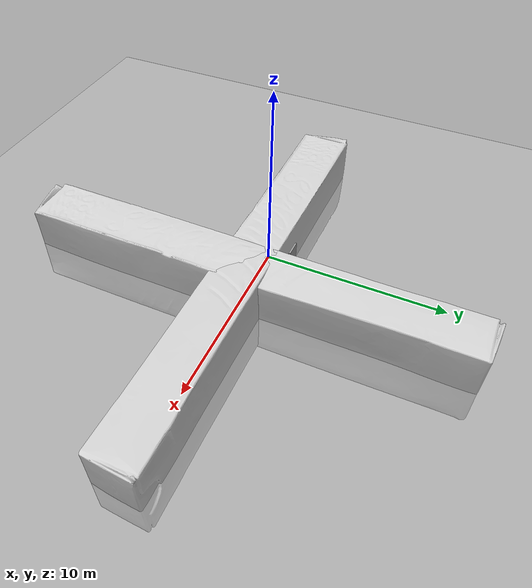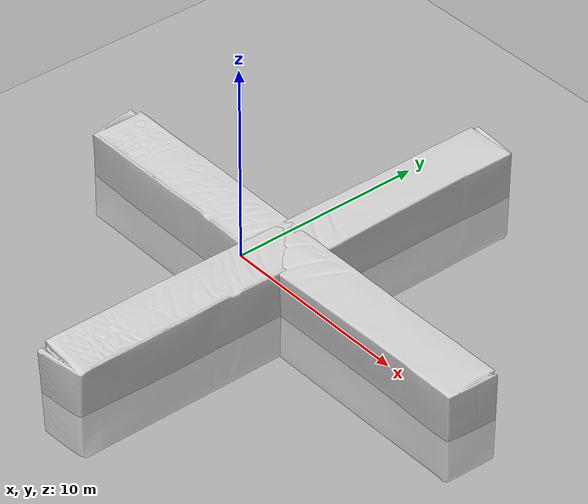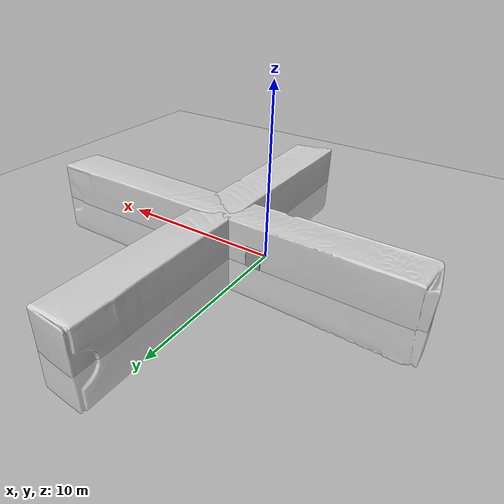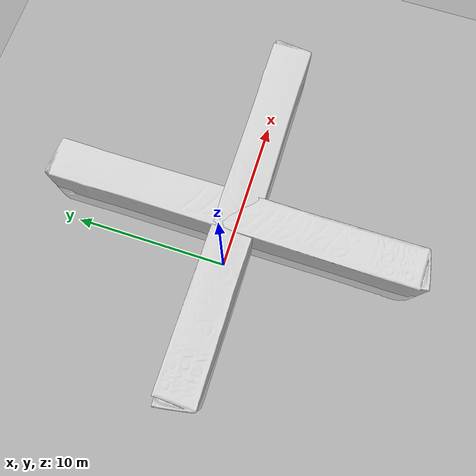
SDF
<sdf version="1.4">
 <world name="default">
  <include><uri>model://ground_plane</uri></include>
  <include><uri>model://sun</uri></include>
  <include><uri>model://shelf</uri><pose>0 1.45
       0 0 0 0</pose><static>true</static></include>
  <include><uri>model://coke_can</uri><pose>3 0 0 0 0 0</pose><static>false</static></include>
  <include><uri>model://pringles_red</uri><pose>3 0 0 0 0 0</pose><static>false</static></include>
  <include><uri>model://tomato_sauce</uri><pose>3 0 0 0 0 0</pose><static>false</static></include>
  <include><uri>model://milk</uri><pose>3 0 0 0 0 0</pose><static>false</static></include>
  <light type="directional" name="my_light"><origin pose="0 2 3 0 0.7 0"/></light>
  <physics type="ode">
   <max_step_size>0.001</max_step_size>
   <real_time_factor>1</real_time_factor>
   <real_time_update_rate>0</real_time_update_rate>
  </physics>
 </world>
</sdf>

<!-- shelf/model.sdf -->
<sdf version="1.5">
  <model name="bookshelf">
    <static>true</static>
    <link name="link">
      <inertial>
        <mass>1.0</mass>
      </inertial>
      <collision name="back">
        <pose>0 0.005 0.6 0 0 0</pose>
        <geometry>
          <box>
            <size>0.9 0.01 1.2</size>
          </box>
        </geometry>
      </collision>
      <visual name="visual1">
        <pose>0 0.005 0.6 0 0 0</pose>
        <geometry>
          <box>
            <size>0.9 0.01 1.2</size>
          </box>
        </geometry>
        <material>
          <script>
            <uri>file://media/materials/scripts/gazebo.material</uri>
            <name>Gazebo/Grey</name>
          </script>
        </material>
      </visual>
      <collision name="left_side">
        <pose>0.45 -0.195 0.6 0 0 0</pose>
        <geometry>
          <box>
            <size>0.02 0.4 1.2</size>
          </box>
        </geometry>
      </collision>
      <visual name="visual2">
        <pose>0.45 -0.195 0.6 0 0 0</pose>
        <geometry>
          <box>
            <size>0.02 0.4 1.2</size>
          </box>
        </geometry>
        <material>
          <script>
            <uri>file://media/materials/scripts/gazebo.material</uri>
            <name>Gazebo/Grey</name>
          </script>
        </material>
      </visual>
      <collision name="right_side">
        <pose>-0.45 -0.195 0.6 0 0 0</pose>
        <geometry>
          <box>
            <size>0.02 0.4 1.2</size>
          </box>
        </geometry>
      </collision>
      <visual name="visual3">
        <pose>-0.45 -0.195 0.6 0 0 0</pose>
        <geometry>
          <box>
            <size>0.02 0.4 1.2</size>
          </box>
        </geometry>
        <material>
          <script>
            <uri>file://media/materials/scripts/gazebo.material</uri>
            <name>Gazebo/Grey</name>
          </script>
        </material>
      </visual>
      <collision name="bottom">
        <pose>0 -0.195 0.03 0 0 0</pose>
        <geometry>
          <box>
            <size>0.88 0.4 0.06</size>
          </box>
        </geometry>
      </collision>
      <visual name="visual4">
        <pose>0 -0.195 0.03 0 0 0</pose>
        <geometry>
          <box>
            <size>0.88 0.4 0.06</size>
          </box>
        </geometry>
        <material>
          <script>
            <uri>file://media/materials/scripts/gazebo.material</uri>
            <name>Gazebo/Grey</name>
          </script>
        </material>
      </visual>
      <collision name="top">
        <pose>0 -0.195 1.19 0 0 0</pose>
        <geometry>
          <box>
            <size>0.88 0.4 0.02</size>
          </box>
        </geometry>
      </collision>
      <visual name="visual5">
        <pose>0 -0.195 1.19 0 0 0</pose>
        <geometry>
          <box>
            <size>0.88 0.4 0.02</size>
          </box>
        </geometry>
        <material>
          <script>
            <uri>file://media/materials/scripts/gazebo.material</uri>
            <name>Gazebo/Grey</name>
          </script>
        </material>
      </visual>
      <collision name="low_shelf">
        <pose>0 -0.195 0.43 0 0 0</pose>
        <geometry>
          <box>
            <size>0.88 0.4 0.02</size>
          </box>
        </geometry>
      </collision>
      <visual name="visual6">
        <pose>0 -0.195 0.43 0 0 0</pose>
        <geometry>
          <box>
            <size>0.88 0.4 0.02</size>
          </box>
        </geometry>
        <material>
          <script>
            <uri>file://media/materials/scripts/gazebo.material</uri>
            <name>Gazebo/Grey</name>
          </script>
        </material>
      </visual>
      <collision name="high_shelf">
        <pose>0 -0.195 0.8 0 0 0</pose>
        <geometry>
          <box>
            <size>0.88 0.4 0.02</size>
          </box>
        </geometry>
      </collision>
      <visual name="visual7">
        <pose>0 -0.195 0.8 0 0 0</pose>
        <geometry>
          <box>
            <size>0.88 0.4 0.02</size>
          </box>
        </geometry>
        <material>
          <script>
            <uri>file://media/materials/scripts/gazebo.material</uri>
            <name>Gazebo/Grey</name>
          </script>
        </material>
      </visual>
    </link>
  </model>
</sdf>

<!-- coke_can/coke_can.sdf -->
<sdf version="1.5">
  <model name="coke_can">
    <link name="coke_can_link">
      <inertial>
        <pose>0 0 0.06 0 0 0</pose>
        <mass>0.390</mass>
        <inertia>
          <ixx>0.00055575</ixx>
          <ixy>0</ixy>
          <ixz>0</ixz>
          <iyy>0.00055575</iyy>
          <iyz>0</iyz>
          <izz>0.0001755</izz>
        </inertia>
      </inertial>
      <collision name="collision">
        <pose>0.003937 0.0047244 -0.18 0 0 0</pose>
        <geometry>
          <mesh>
            <uri>model://coke_can/meshes/coke_can.dae</uri>
          </mesh>
        </geometry>
        <surface>
          <friction>
            <ode>
              <mu>1.0</mu>
              <mu2>1.0</mu2>
            </ode>
          </friction>
          <contact>
            <ode>
              <kp>10000000.0</kp>
              <kd>1.0</kd>
              <min_depth>0.001</min_depth>
              <max_vel>0.1</max_vel>
            </ode>
          </contact>
        </surface>
      </collision>
      <visual name="visual">
        <pose>0.003937 0.0047244 -0.18 0 0 0</pose>
        <geometry>
          <mesh>
            <uri>model://coke_can/meshes/coke_can.dae</uri>
          </mesh>
        </geometry>
      </visual>
    </link>
  </model>
</sdf>

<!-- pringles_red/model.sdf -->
<sdf version='1.6'>
  <model name='pringles_red'>
    <link name='link'>
      <inertial>
        <mass>0.25</mass>
        <inertia>
          <ixx>0</ixx>
          <ixy>0</ixy>
          <ixz>0</ixz>
          <iyy>0</iyy>
          <iyz>0</iyz>
          <izz>0</izz>
        </inertia>
      </inertial>
      <velocity_decay>
        <linear>0</linear>
        <angular>0</angular>
      </velocity_decay>
      <self_collide>0</self_collide>
      <kinematic>0</kinematic>
      <gravity>1</gravity>
      <enable_wind>0</enable_wind>
      <pose frame=''>0 0 0 -0 -0 -0</pose>
      <visual name='visual'>
        <geometry>
          <cylinder>
            <radius>0.04</radius>
            <length>0.235</length>
          </cylinder>
        </geometry>
        <material>
          <script>
            <uri>model://pringles/material/scripts</uri>
            <uri>model://pringles/material/textures</uri>
            <name>Custom/pringles</name>
          </script>
        </material>
        <pose frame=''>0 0 0 0 -0 0</pose>
        <transparency>0</transparency>
        <cast_shadows>1</cast_shadows>
      </visual>
      <collision name='collision'>
        <laser_retro>0</laser_retro>
        <max_contacts>10</max_contacts>
        <pose frame=''>0 0 0 0 -0 0</pose>
        <geometry>
          <cylinder>
            <radius>0.04</radius>
            <length>0.235</length>
          </cylinder>
        </geometry>
        <surface>
          <friction>
            <ode>
              <mu>1</mu>
              <mu2>1</mu2>
              <fdir1>0 0 0</fdir1>
              <slip1>0</slip1>
              <slip2>0</slip2>
            </ode>
            <torsional>
              <coefficient>1</coefficient>
              <patch_radius>0</patch_radius>
              <surface_radius>0</surface_radius>
              <use_patch_radius>1</use_patch_radius>
              <ode>
                <slip>0</slip>
              </ode>
            </torsional>
          </friction>
          <bounce>
            <restitution_coefficient>0</restitution_coefficient>
            <threshold>1e+06</threshold>
          </bounce>
          <contact>
            <collide_without_contact>0</collide_without_contact>
            <collide_without_contact_bitmask>1</collide_without_contact_bitmask>
            <collide_bitmask>1</collide_bitmask>
            <ode>
              <soft_cfm>0</soft_cfm>
              <soft_erp>0.2</soft_erp>
              <kp>1e+13</kp>
              <kd>1</kd>
              <max_vel>0.01</max_vel>
              <min_depth>0</min_depth>
            </ode>
            <bullet>
              <split_impulse>1</split_impulse>
              <split_impulse_penetration_threshold>-0.01</split_impulse_penetration_threshold>
              <soft_cfm>0</soft_cfm>
              <soft_erp>0.2</soft_erp>
              <kp>1e+13</kp>
              <kd>1</kd>
            </bullet>
          </contact>
        </surface>
      </collision>
    </link>
    <static>0</static>
    <allow_auto_disable>1</allow_auto_disable>
  </model>
</sdf>

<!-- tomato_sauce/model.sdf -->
<sdf version='1.6'>
  <model name='tomato_sauce'>
    <link name='base_link'>
      <pose frame=''>0 0 0 0 -0 0</pose>
      <inertial>
        <pose frame=''>0 0 0 0 -0 0</pose>
        <mass>1</mass>
        <inertia>
          <ixx>1</ixx>
          <ixy>0</ixy>
          <ixz>0</ixz>
          <iyy>1</iyy>
          <iyz>0</iyz>
          <izz>1</izz>
        </inertia>
      </inertial>
      <self_collide>0</self_collide>
      <kinematic>0</kinematic>
      <visual name='base_link_visual'>
        <pose frame=''>0 0 0 0 -0 0</pose>
        <geometry>
          <mesh>
            <scale>1 1 1</scale>
            <uri>model://tomato_sauce/meshes/model.dae</uri>
          </mesh>
        </geometry>
        <cast_shadows>1</cast_shadows>
        <transparency>0</transparency>
      </visual>
      <collision name='base_link_collision'>
        <laser_retro>0</laser_retro>
        <max_contacts>10</max_contacts>
        <pose frame=''>0 0 0.055 0 -0 0</pose>
        <geometry>
          <box>
            <size>0.076 0.047 0.11</size>
          </box>
        </geometry>
        <surface>
          <friction>
            <ode>
              <mu>1</mu>
              <mu2>1</mu2>
              <fdir1>0 0 0</fdir1>
              <slip1>0</slip1>
              <slip2>0</slip2>
            </ode>
            <torsional>
              <coefficient>1</coefficient>
              <patch_radius>0</patch_radius>
              <surface_radius>0</surface_radius>
              <use_patch_radius>1</use_patch_radius>
              <ode>
                <slip>0</slip>
              </ode>
            </torsional>
          </friction>
          <bounce>
            <restitution_coefficient>0</restitution_coefficient>
            <threshold>1e+06</threshold>
          </bounce>
          <contact>
            <collide_without_contact>0</collide_without_contact>
            <collide_without_contact_bitmask>1</collide_without_contact_bitmask>
            <collide_bitmask>1</collide_bitmask>
            <ode>
              <soft_cfm>0</soft_cfm>
              <soft_erp>0.2</soft_erp>
              <kp>1e+13</kp>
              <kd>1</kd>
              <max_vel>0.01</max_vel>
              <min_depth>0</min_depth>
            </ode>
            <bullet>
              <split_impulse>1</split_impulse>
              <split_impulse_penetration_threshold>-0.01</split_impulse_penetration_threshold>
              <soft_cfm>0</soft_cfm>
              <soft_erp>0.2</soft_erp>
              <kp>1e+13</kp>
              <kd>1</kd>
            </bullet>
          </contact>
        </surface>
      </collision>
    </link>
    <static>1</static>
    <allow_auto_disable>1</allow_auto_disable>
  </model>
</sdf>

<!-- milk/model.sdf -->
<sdf version='1.6'>
  <model name='milk'>
    <link name='box_body'>
      <pose frame=''>0 0 0 0 -0 0</pose>
      <inertial>
        <pose frame=''>0 0 0 0 -0 0</pose>
        <mass>1</mass>
        <inertia>
          <ixx>1</ixx>
          <ixy>0</ixy>
          <ixz>0</ixz>
          <iyy>1</iyy>
          <iyz>0</iyz>
          <izz>1</izz>
        </inertia>
      </inertial>
      <self_collide>0</self_collide>
      <kinematic>0</kinematic>
      <visual name='box_body_visual'>
        <pose frame=''>0 0 0 0 -0 1.5708</pose>
        <geometry>
          <mesh>
            <scale>1 1 1</scale>
            <uri>model://milk/meshes/model.dae</uri>
          </mesh>
        </geometry>
        <cast_shadows>1</cast_shadows>
        <transparency>0</transparency>
      </visual>
      <collision name='box_body_collision'>
        <laser_retro>0</laser_retro>
        <max_contacts>10</max_contacts>
        <pose frame=''>0 0 0.1 0 -0 0</pose>
        <geometry>
          <box>
            <size>0.06 0.095 0.2</size>
          </box>
        </geometry>
        <surface>
          <friction>
            <ode>
              <mu>1</mu>
              <mu2>1</mu2>
              <fdir1>0 0 0</fdir1>
              <slip1>0</slip1>
              <slip2>0</slip2>
            </ode>
            <torsional>
              <coefficient>1</coefficient>
              <patch_radius>0</patch_radius>
              <surface_radius>0</surface_radius>
              <use_patch_radius>1</use_patch_radius>
              <ode>
                <slip>0</slip>
              </ode>
            </torsional>
          </friction>
          <bounce>
            <restitution_coefficient>0</restitution_coefficient>
            <threshold>1e+06</threshold>
          </bounce>
          <contact>
            <collide_without_contact>0</collide_without_contact>
            <collide_without_contact_bitmask>1</collide_without_contact_bitmask>
            <collide_bitmask>1</collide_bitmask>
            <ode>
              <soft_cfm>0</soft_cfm>
              <soft_erp>0.2</soft_erp>
              <kp>1e+13</kp>
              <kd>1</kd>
              <max_vel>0.01</max_vel>
              <min_depth>0</min_depth>
            </ode>
            <bullet>
              <split_impulse>1</split_impulse>
              <split_impulse_penetration_threshold>-0.01</split_impulse_penetration_threshold>
              <soft_cfm>0</soft_cfm>
              <soft_erp>0.2</soft_erp>
              <kp>1e+13</kp>
              <kd>1</kd>
            </bullet>
          </contact>
        </surface>
      </collision>
    </link>
    <static>1</static>
    <allow_auto_disable>1</allow_auto_disable>
  </model>
</sdf>
